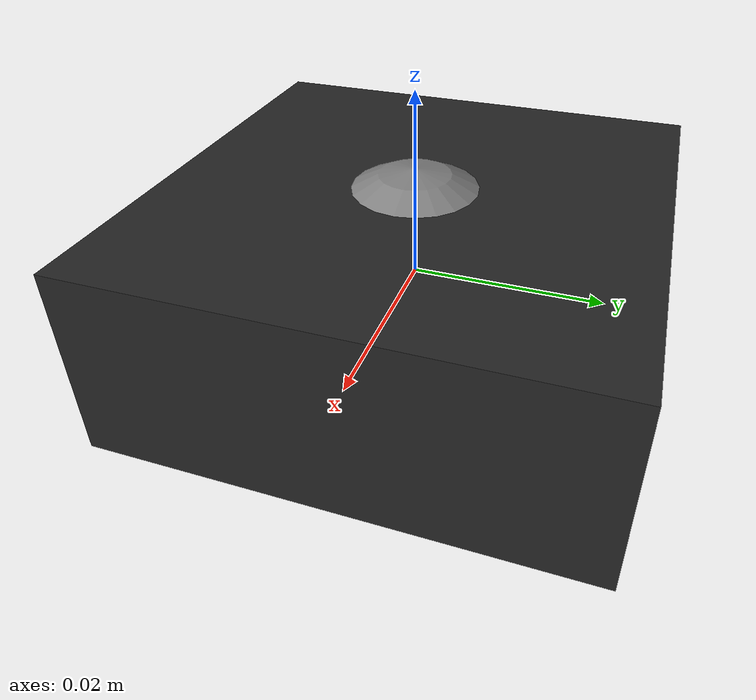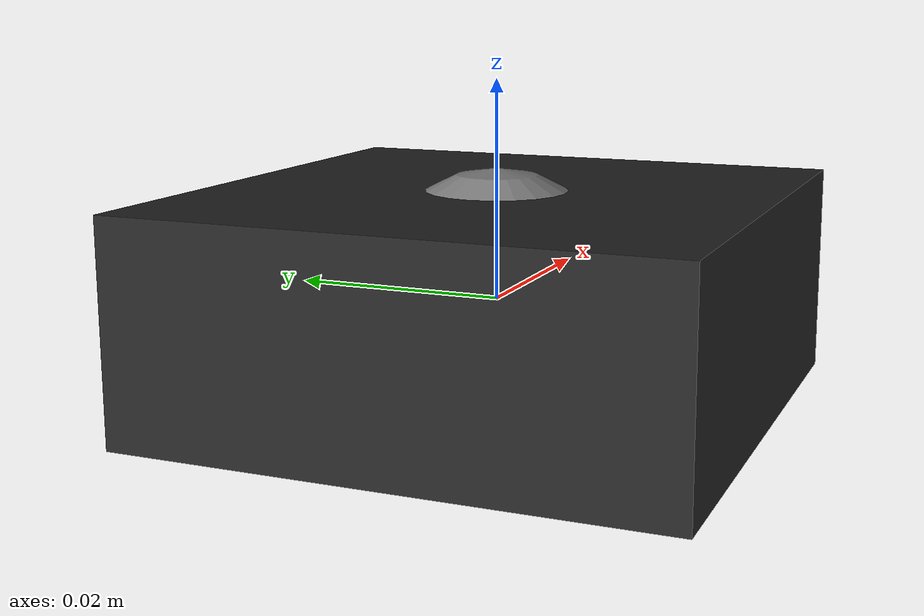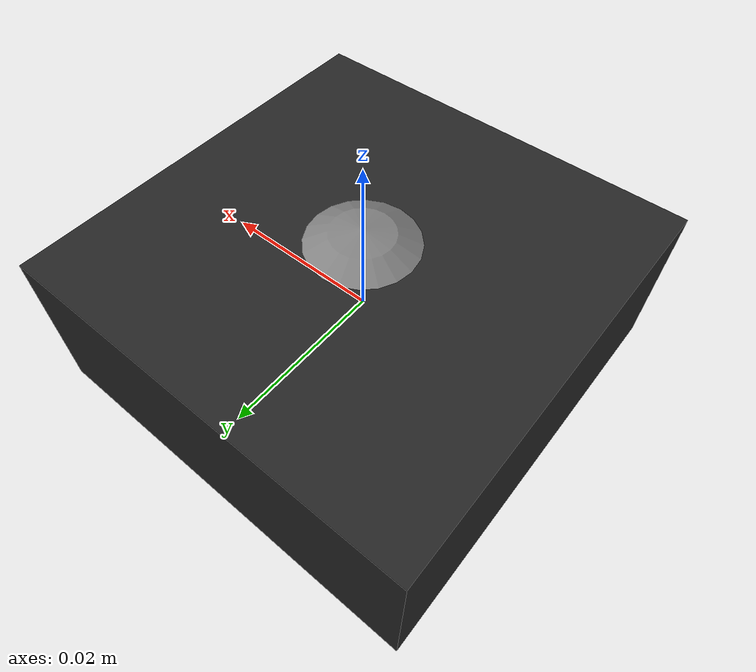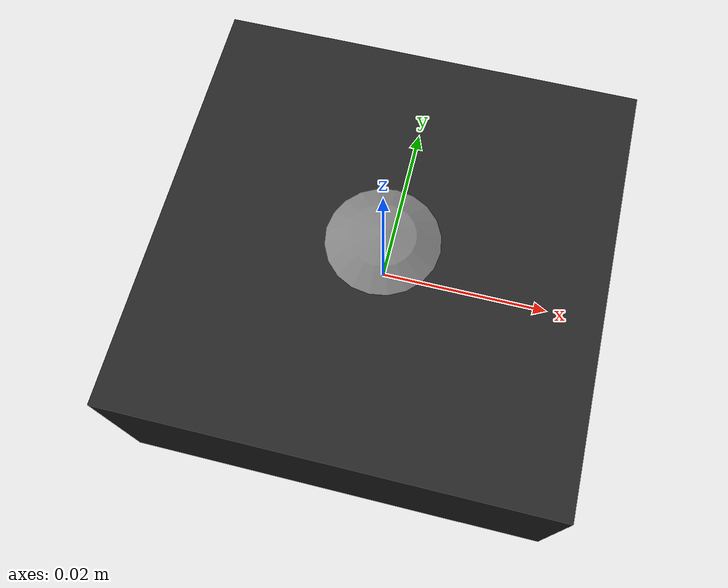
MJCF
<mujoco model="ft_sensor">
  <worldbody>
    <body name="wrist_ft_body">
      <inertial pos="0 0 0" mass="0.01" diaginertia="1e-5 1e-5 1e-5"/>
      <geom name="wrist_ft_geom" type="box" size="0.025 0.025 0.01"
            contype="0" conaffinity="0" rgba="0.15 0.15 0.15 1"/>
      <site name="wrist_ft_site" pos="0 0 0" size="0.012"/>
    </body>
  </worldbody>

  <sensor>
    <force name="wrist_ft_force" site="wrist_ft_site"/>
    <torque name="wrist_ft_torque" site="wrist_ft_site"/>
  </sensor>
</mujoco>
